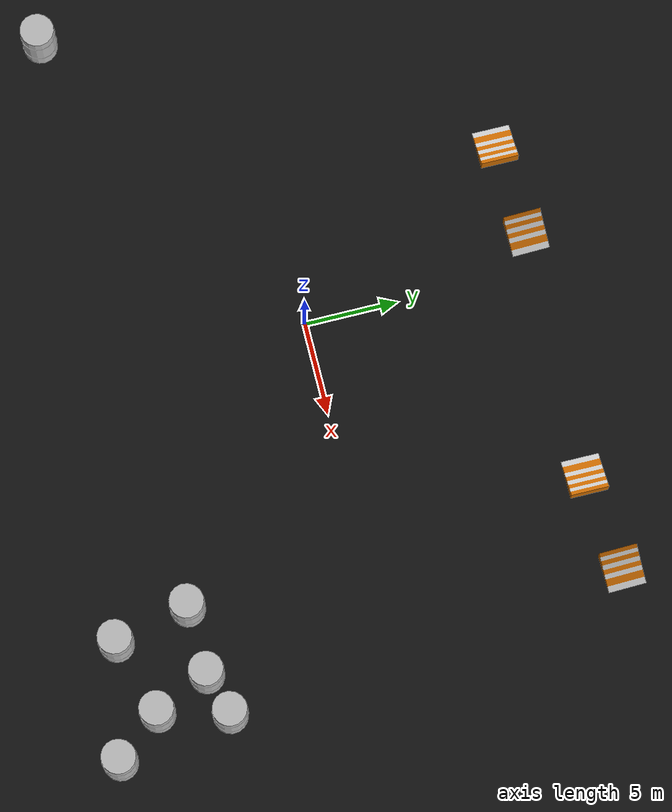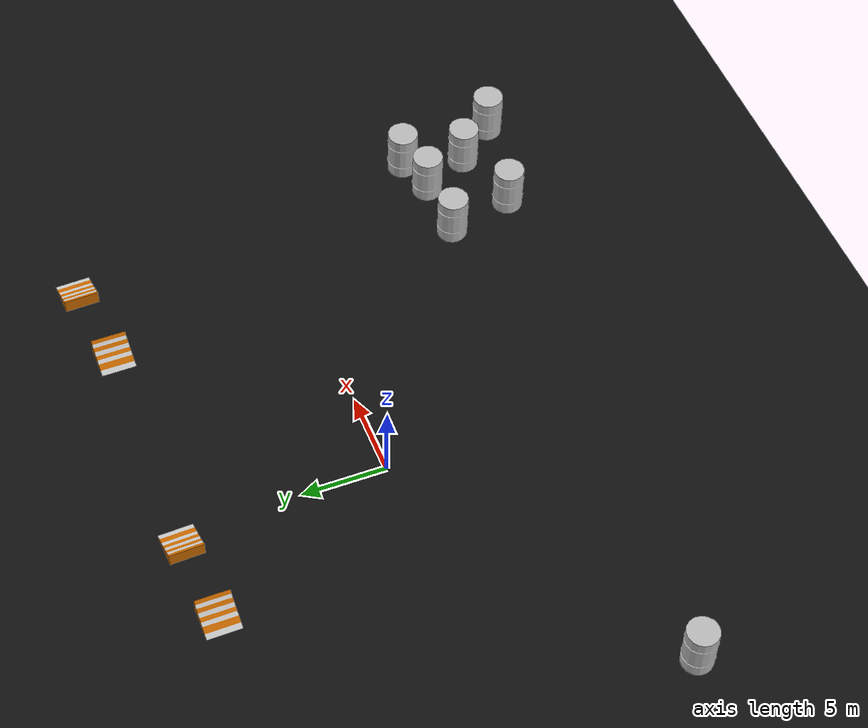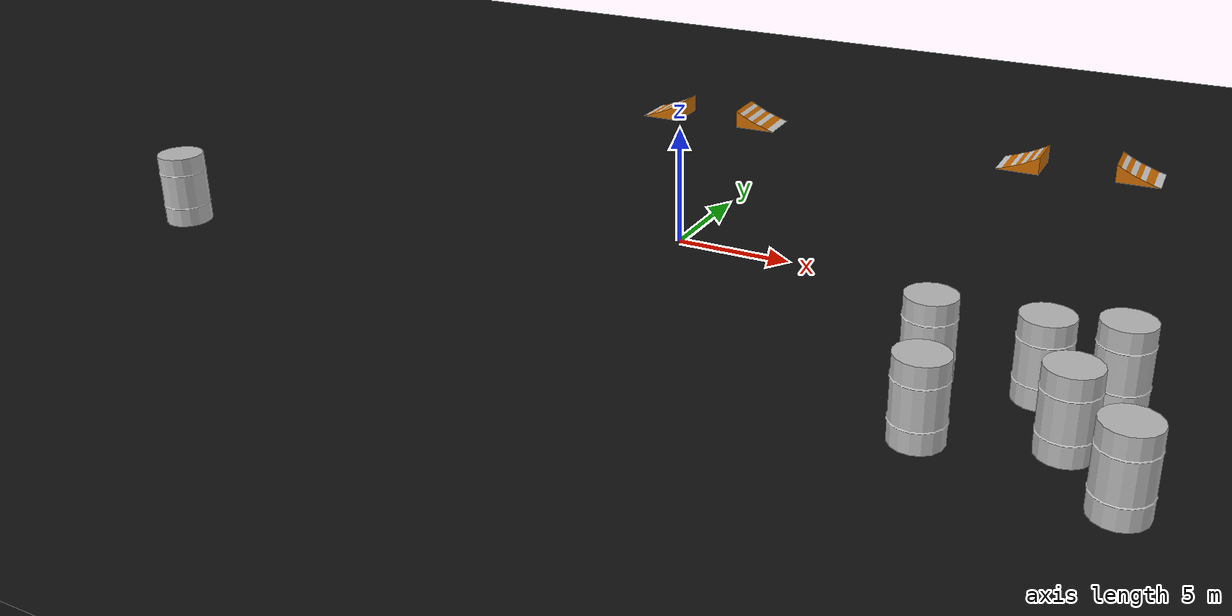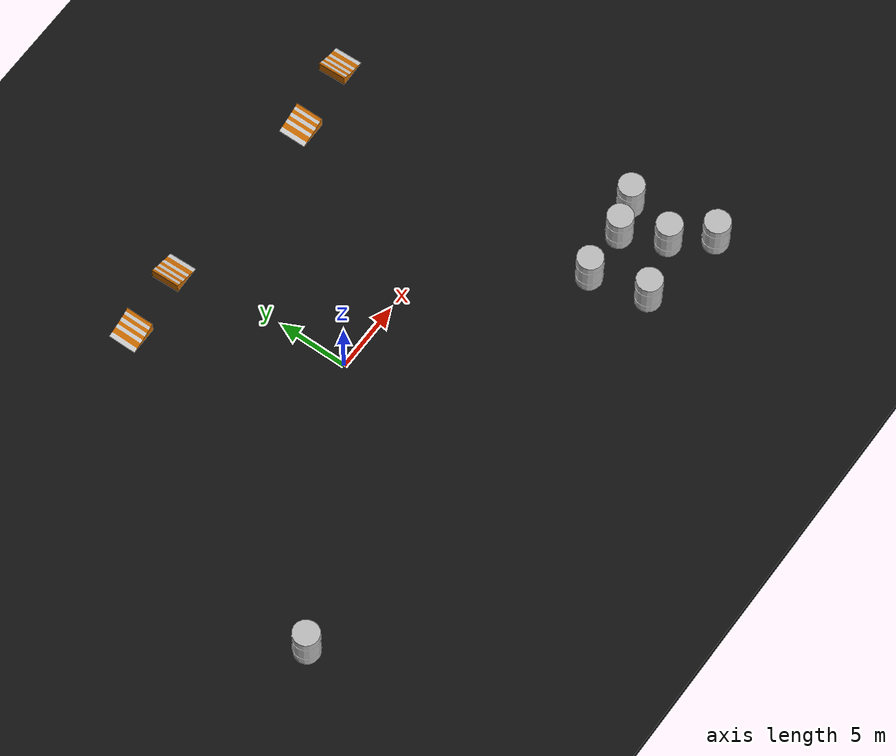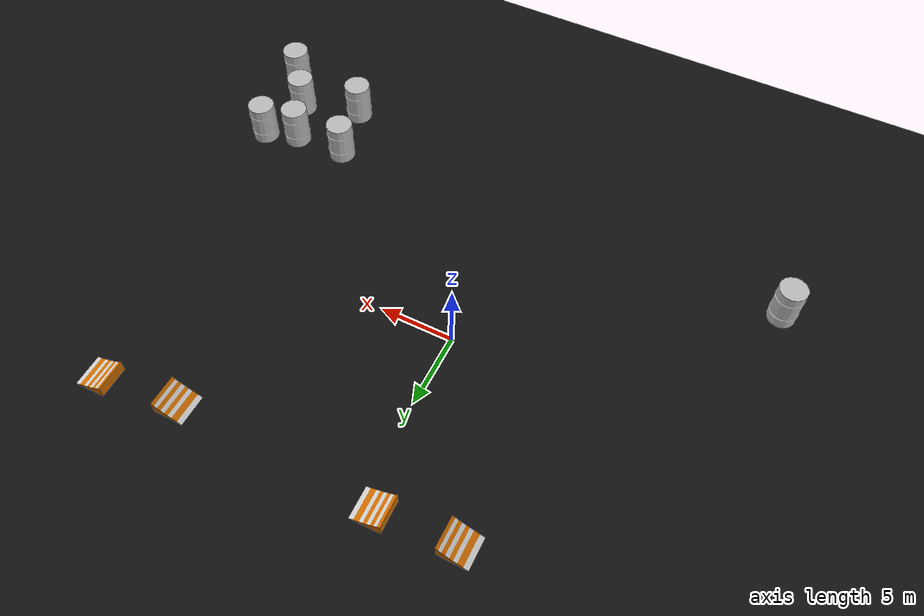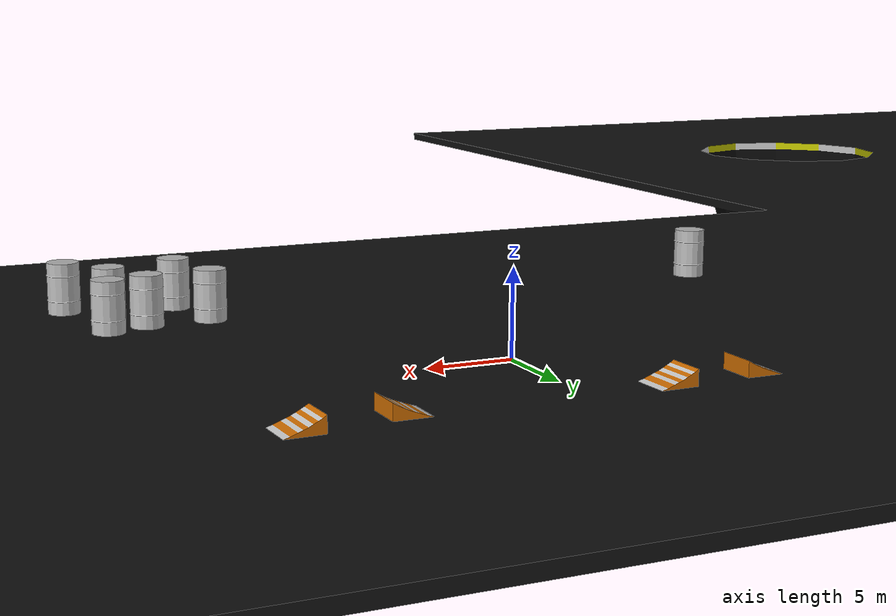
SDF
<sdf version="1.7">
 <world name="default">
  <model name="carpark">
   <static>1</static>
   <link name="carpark_link">
    <visual name="carpark_visual">
     <cast_shadows>0</cast_shadows>
     <geometry><mesh><uri>model://carpark/meshes/carpark.dae</uri></mesh></geometry>
    </visual>
    <collision name="carpark_collision_ground">
     <geometry><mesh><uri>model://carpark/meshes/carpark_floor.dae</uri></mesh></geometry>
    </collision>
    <collision name="carpark_collision_sidewalk">
     <geometry><mesh><uri>model://carpark/meshes/carpark_sidewalk.dae</uri></mesh></geometry>
    </collision>
    <collision name="carpark_collision_objects">
     <geometry><mesh><uri>model://carpark/meshes/carpark_objects.dae</uri></mesh></geometry>
    </collision>
   </link>
   <pose>0.424439 -0.235401 0 0 -0 0</pose>
  </model>
  <model name="ramp">
   <pose>16.8649 12.6439 1.45 0 -0 0.028561</pose>
   <static>1</static>
   <link name="body">
    <inertial>
     <mass>1</mass>
     <inertia>
      <ixx>0.166667</ixx>
      <ixy>0</ixy>
      <ixz>0</ixz>
      <iyy>0.166667</iyy>
      <iyz>0</iyz>
      <izz>0.166667</izz>
     </inertia>
    </inertial>
    <collision name="collision">
     <geometry><mesh><uri>model://ramp/meshes/ramp.dae</uri></mesh></geometry>
    </collision>
    <visual name="visual"><geometry><mesh><uri>model://ramp/meshes/ramp.dae</uri></mesh></geometry></visual>
    <cast_shadows>0</cast_shadows>
   </link>
  </model>
  <model name="ramp_clone">
   <pose>-1.58673 12.3228 1.45 0 -0 0.028561</pose>
   <static>1</static>
   <link name="body">
    <inertial>
     <mass>1</mass>
     <inertia>
      <ixx>0.166667</ixx>
      <ixy>0</ixy>
      <ixz>0</ixz>
      <iyy>0.166667</iyy>
      <iyz>0</iyz>
      <izz>0.166667</izz>
     </inertia>
    </inertial>
    <collision name="collision">
     <geometry><mesh><uri>model://ramp/meshes/ramp.dae</uri></mesh></geometry>
    </collision>
    <visual name="visual"><geometry><mesh><uri>model://ramp/meshes/ramp.dae</uri></mesh></geometry></visual>
    <cast_shadows>0</cast_shadows>
   </link>
  </model>
  <model name="ramp_clone_clone">
   <pose>11.6185 12.012 1.45 0 0 -3.14132</pose>
   <static>1</static>
   <link name="body">
    <inertial>
     <mass>1</mass>
     <inertia>
      <ixx>0.166667</ixx>
      <ixy>0</ixy>
      <ixz>0</ixz>
      <iyy>0.166667</iyy>
      <iyz>0</iyz>
      <izz>0.166667</izz>
     </inertia>
    </inertial>
    <collision name="collision">
     <geometry><mesh><uri>model://ramp/meshes/ramp.dae</uri></mesh></geometry>
    </collision>
    <visual name="visual"><geometry><mesh><uri>model://ramp/meshes/ramp.dae</uri></mesh></geometry></visual>
    <cast_shadows>0</cast_shadows>
   </link>
  </model>
  <model name="ramp_clone_clone_clone">
   <pose>-6.65707 11.9263 1.45 0 0 -3.14132</pose>
   <static>1</static>
   <link name="body">
    <inertial>
     <mass>1</mass>
     <inertia>
      <ixx>0.166667</ixx>
      <ixy>0</ixy>
      <ixz>0</ixz>
      <iyy>0.166667</iyy>
      <iyz>0</iyz>
      <izz>0.166667</izz>
     </inertia>
    </inertial>
    <collision name="collision">
     <geometry><mesh><uri>model://ramp/meshes/ramp.dae</uri></mesh></geometry>
    </collision>
    <visual name="visual"><geometry><mesh><uri>model://ramp/meshes/ramp.dae</uri></mesh></geometry></visual>
    <cast_shadows>0</cast_shadows>
   </link>
  </model>
  <model name="biohazard_barrel">
   <pose>14.5168 -13.3873 1.45781 -0.000345 0 1.25366</pose>
   <static>0</static>
   <link name="body">
    <inertial>
     <mass>1</mass>
     <inertia>
      <ixx>0.166667</ixx>
      <ixy>0</ixy>
      <ixz>0</ixz>
      <iyy>0.166667</iyy>
      <iyz>0</iyz>
      <izz>0.166667</izz>
     </inertia>
    </inertial>
    <collision name="collision">
     <geometry><mesh><uri>model://biohazard_barrel/meshes/biohazard.dae</uri></mesh></geometry>
    </collision>
    <visual name="visual">
     <geometry><mesh><uri>model://biohazard_barrel/meshes/biohazard.dae</uri></mesh></geometry>
    </visual>
    <cast_shadows>0</cast_shadows>
   </link>
  </model>
  <model name="biohazard_barrel_clone">
   <pose>18.5288 -12.163 1.45781 -0.000345 0 1.25366</pose>
   <static>0</static>
   <link name="body">
    <inertial>
     <mass>1</mass>
     <inertia>
      <ixx>0.166667</ixx>
      <ixy>0</ixy>
      <ixz>0</ixz>
      <iyy>0.166667</iyy>
      <iyz>0</iyz>
      <izz>0.166667</izz>
     </inertia>
    </inertial>
    <collision name="collision">
     <geometry><mesh><uri>model://biohazard_barrel/meshes/biohazard.dae</uri></mesh></geometry>
    </collision>
    <visual name="visual">
     <geometry><mesh><uri>model://biohazard_barrel/meshes/biohazard.dae</uri></mesh></geometry>
    </visual>
    <cast_shadows>0</cast_shadows>
   </link>
  </model>
  <model name="biohazard_barrel_clone_0">
   <pose>17.1832 -9.29246 1.45781 -0.000345 0 1.25366</pose>
   <static>0</static>
   <link name="body">
    <inertial>
     <mass>1</mass>
     <inertia>
      <ixx>0.166667</ixx>
      <ixy>0</ixy>
      <ixz>0</ixz>
      <iyy>0.166667</iyy>
      <iyz>0</iyz>
      <izz>0.166667</izz>
     </inertia>
    </inertial>
    <collision name="collision">
     <geometry><mesh><uri>model://biohazard_barrel/meshes/biohazard.dae</uri></mesh></geometry>
    </collision>
    <visual name="visual">
     <geometry><mesh><uri>model://biohazard_barrel/meshes/biohazard.dae</uri></mesh></geometry>
    </visual>
    <cast_shadows>0</cast_shadows>
   </link>
  </model>
  <model name="biohazard_barrel_clone_1">
   <pose>13.6036 -9.45024 1.4578 -0.000352 -6e-06 1.25366</pose>
   <static>0</static>
   <link name="body">
    <inertial>
     <mass>1</mass>
     <inertia>
      <ixx>0.166667</ixx>
      <ixy>0</ixy>
      <ixz>0</ixz>
      <iyy>0.166667</iyy>
      <iyz>0</iyz>
      <izz>0.166667</izz>
     </inertia>
    </inertial>
    <collision name="collision">
     <geometry><mesh><uri>model://biohazard_barrel/meshes/biohazard.dae</uri></mesh></geometry>
    </collision>
    <visual name="visual">
     <geometry><mesh><uri>model://biohazard_barrel/meshes/biohazard.dae</uri></mesh></geometry>
    </visual>
    <cast_shadows>0</cast_shadows>
   </link>
  </model>
  <model name="biohazard_barrel_clone_2">
   <pose>20.467 -14.5536 1.45781 -0.000345 0 1.25366</pose>
   <static>0</static>
   <link name="body">
    <inertial>
     <mass>1</mass>
     <inertia>
      <ixx>0.166667</ixx>
      <ixy>0</ixy>
      <ixz>0</ixz>
      <iyy>0.166667</iyy>
      <iyz>0</iyz>
      <izz>0.166667</izz>
     </inertia>
    </inertial>
    <collision name="collision">
     <geometry><mesh><uri>model://biohazard_barrel/meshes/biohazard.dae</uri></mesh></geometry>
    </collision>
    <visual name="visual">
     <geometry><mesh><uri>model://biohazard_barrel/meshes/biohazard.dae</uri></mesh></geometry>
    </visual>
    <cast_shadows>0</cast_shadows>
   </link>
  </model>
  <model name="biohazard_barrel_clone_3">
   <pose>19.4469 -8.59827 1.45781 -0.000345 -0 1.03427</pose>
   <static>0</static>
   <link name="body">
    <inertial>
     <mass>1</mass>
     <inertia>
      <ixx>0.166667</ixx>
      <ixy>0</ixy>
      <ixz>0</ixz>
      <iyy>0.166667</iyy>
      <iyz>0</iyz>
      <izz>0.166667</izz>
     </inertia>
    </inertial>
    <collision name="collision">
     <geometry><mesh><uri>model://biohazard_barrel/meshes/biohazard.dae</uri></mesh></geometry>
    </collision>
    <visual name="visual">
     <geometry><mesh><uri>model://biohazard_barrel/meshes/biohazard.dae</uri></mesh></geometry>
    </visual>
    <cast_shadows>0</cast_shadows>
   </link>
  </model>
  <model name="biohazard_barrel_clone_7">
   <pose>-17.6991 -10.1051 1.45781 -0.000345 -0 1.25343</pose>
   <static>0</static>
   <link name="body">
    <inertial>
     <mass>1</mass>
     <inertia>
      <ixx>0.166667</ixx>
      <ixy>0</ixy>
      <ixz>0</ixz>
      <iyy>0.166667</iyy>
      <iyz>0</iyz>
      <izz>0.166667</izz>
     </inertia>
    </inertial>
    <collision name="collision">
     <geometry><mesh><uri>model://biohazard_barrel/meshes/biohazard.dae</uri></mesh></geometry>
    </collision>
    <visual name="visual">
     <geometry><mesh><uri>model://biohazard_barrel/meshes/biohazard.dae</uri></mesh></geometry>
    </visual>
    <cast_shadows>0</cast_shadows>
   </link>
  </model>
 </world>
</sdf>
